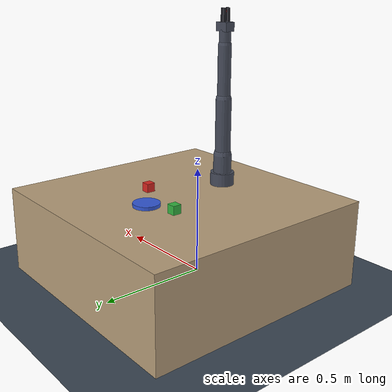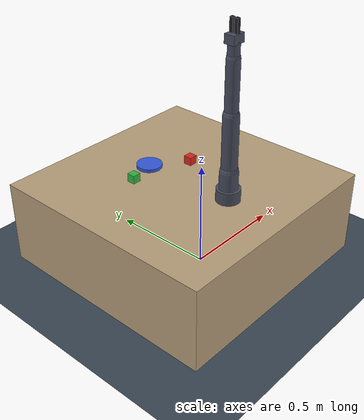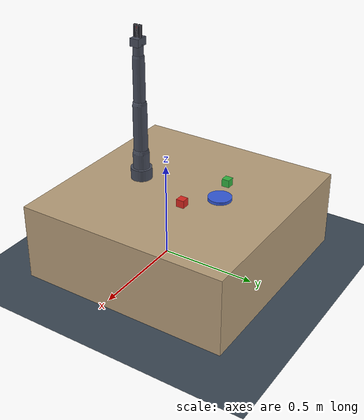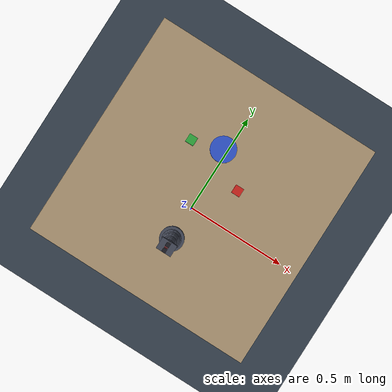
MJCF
<mujoco model="tabletop">
  <compiler angle="radian" autolimits="true"/>
  <option timestep="0.002" integrator="implicitfast"/>

  <visual>
    <global offwidth="640" offheight="480"/>
    <headlight ambient="0.4 0.4 0.4" diffuse="0.7 0.7 0.7"/>
    <quality shadowsize="2048"/>
  </visual>

  <asset>
    <texture name="grid" type="2d" builtin="checker" rgb1="0.20 0.25 0.30" rgb2="0.25 0.30 0.35"
             width="300" height="300"/>
    <material name="grid" texture="grid" texrepeat="6 6" reflectance="0.05"/>
    <material name="table" rgba="0.72 0.62 0.48 1"/>
    <material name="metal" rgba="0.28 0.30 0.36 1"/>
  </asset>

  <default>
    <geom solref="0.004 1" friction="1 0.05 0.01"/>
    <default class="arm">
      <joint type="hinge" damping="8" armature="0.1"/>
      <geom type="capsule" material="metal" mass="0.6"/>
      <position kp="400" kv="40" forcerange="-150 150"/>
    </default>
    <default class="finger">
      <joint type="slide" damping="20" armature="0.01"/>
      <geom type="box" rgba="0.12 0.12 0.15 1" mass="0.05"
            friction="2.5 0.2 0.01" solimp="0.97 0.995 0.001"/>
    </default>
    <default class="object">
      <geom mass="0.05" friction="1.5 0.1 0.01" solimp="0.97 0.995 0.001"/>
    </default>
  </default>

  <worldbody>
    <light pos="0.3 -0.4 1.6" dir="-0.2 0.3 -1" diffuse="0.8 0.8 0.8"/>
    <geom name="floor" type="plane" size="3 3 0.05" material="grid"/>

    <geom name="table" type="box" size="0.55 0.55 0.2" pos="0 0.1 0.2" material="table"/>

    <camera name="front" pos="0 -0.05 1.25" xyaxes="1 0 0  0 0.961 0.278" fovy="50"/>

    <body name="base" pos="0 -0.15 0.4">
      <geom type="cylinder" size="0.055 0.03" pos="0 0 0.03" material="metal" mass="2"/>

      <body name="link1" pos="0 0 0.06" gravcomp="1">
        <joint name="joint1" class="arm" axis="0 0 1" range="-3.1 3.1"/>
        <geom class="arm" fromto="0 0 0  0 0 0.08" size="0.042"/>

        <body name="link2" pos="0 0 0.08" gravcomp="1">
          <joint name="joint2" class="arm" axis="1 0 0" range="-2.2 2.2"/>
          <geom class="arm" fromto="0 0 0  0 0 0.26" size="0.036"/>

          <body name="link3" pos="0 0 0.26" gravcomp="1">
            <joint name="joint3" class="arm" axis="1 0 0" range="-2.7 2.7"/>
            <geom class="arm" fromto="0 0 0  0 0 0.24" size="0.030"/>

            <body name="link4" pos="0 0 0.24" gravcomp="1">
              <joint name="joint4" class="arm" axis="1 0 0" range="-2.2 2.2"/>
              <geom class="arm" fromto="0 0 0  0 0 0.06" size="0.026"/>

              <body name="wrist" pos="0 0 0.06" gravcomp="1">
                <joint name="joint5" class="arm" axis="0 0 1" range="-3.1 3.1"/>
                <geom type="box" size="0.032 0.024 0.02" pos="0 0 0.02" material="metal" mass="0.2"/>

                <!-- Grasp centre: between the fingertips. IK targets this site. -->
                <site name="ee_site" pos="0 0 0.085" size="0.007" rgba="1 0.2 0.2 0.4"/>
                <camera name="wrist" pos="0 -0.07 0.03" xyaxes="1 0 0  0 0.45 0.89" fovy="70"/>

                <body name="finger_left" pos="0 0 0.04" gravcomp="1">
                  <joint name="finger_left" class="finger" axis="0 1 0" range="0 0.04"/>
                  <geom class="finger" name="fingerpad_left" size="0.008 0.008 0.03" pos="0 0.012 0.03"/>
                </body>
                <body name="finger_right" pos="0 0 0.04" gravcomp="1">
                  <joint name="finger_right" class="finger" axis="0 -1 0" range="0 0.04"/>
                  <geom class="finger" name="fingerpad_right" size="0.008 0.008 0.03" pos="0 -0.012 0.03"/>
                </body>
              </body>
            </body>
          </body>
        </body>
      </body>
    </body>

    <body name="red_cube" pos="0.13 0.18 0.42">
      <freejoint name="red_cube"/>
      <geom class="object" name="red_cube" type="box" size="0.02 0.02 0.02" rgba="0.85 0.15 0.12 1"/>
    </body>

    <body name="green_cube" pos="-0.16 0.26 0.42">
      <freejoint name="green_cube"/>
      <geom class="object" name="green_cube" type="box" size="0.02 0.02 0.02" rgba="0.20 0.70 0.25 1"/>
    </body>

    <body name="blue_plate" pos="-0.02 0.30 0.408">
      <freejoint name="blue_plate"/>
      <geom class="object" name="blue_plate" type="cylinder" size="0.06 0.008"
            rgba="0.20 0.35 0.85 1" mass="0.3"/>
    </body>
  </worldbody>

  <!-- Adjacent links overlap by construction; without these the permanent contact
       between a link and its parent applies friction that locks the joint. -->
  <contact>
    <exclude body1="base" body2="link1"/>
    <exclude body1="link1" body2="link2"/>
    <exclude body1="link2" body2="link3"/>
    <exclude body1="link3" body2="link4"/>
    <exclude body1="link4" body2="wrist"/>
    <exclude body1="wrist" body2="finger_left"/>
    <exclude body1="wrist" body2="finger_right"/>
    <exclude body1="finger_left" body2="finger_right"/>
  </contact>

  <!-- One control drives both fingers symmetrically. -->
  <equality>
    <joint joint1="finger_left" joint2="finger_right" polycoef="0 1 0 0 0"/>
  </equality>

  <actuator>
    <position class="arm" name="joint1" joint="joint1"/>
    <position class="arm" name="joint2" joint="joint2"/>
    <position class="arm" name="joint3" joint="joint3"/>
    <position class="arm" name="joint4" joint="joint4"/>
    <position class="arm" name="joint5" joint="joint5"/>
    <position name="gripper" joint="finger_left" kp="120" kv="8"
              ctrlrange="0 0.04" forcerange="-40 40"/>
  </actuator>

  <!-- Home parks the arm at the near-left edge of the frame so it never occludes the
       objects, while the gripper stays visible for the model to see its own body. -->
  <keyframe>
    <key name="home" qpos="0.909 -0.147 -1.561 -1.432 0.908 0.04 0.04
                           0.13 0.18 0.42 1 0 0 0
                           -0.16 0.26 0.42 1 0 0 0
                           -0.02 0.30 0.408 1 0 0 0"
              ctrl="0.909 -0.147 -1.561 -1.432 0.908 0.04"/>
  </keyframe>
</mujoco>
